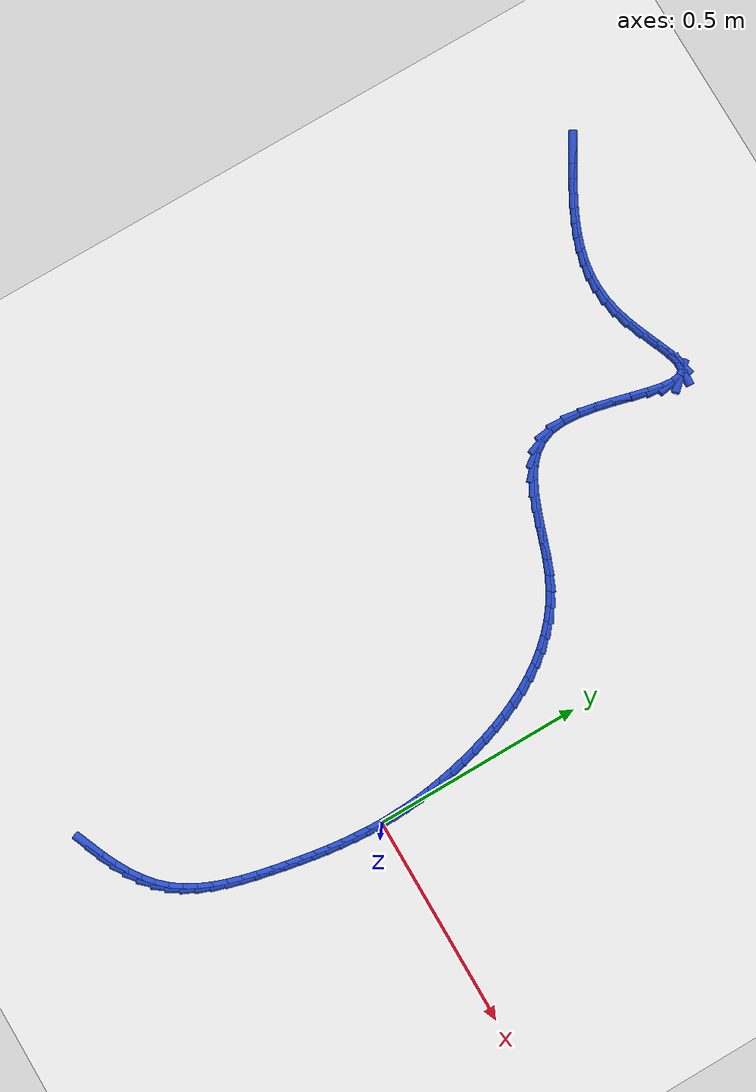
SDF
<sdf version="1.6">
 <world name="default">
  <model name="ground_plane">
   <static>1</static>
   <link name="link">
    <collision name="collision">
     <geometry><plane><normal>0 0 1</normal><size>100 100</size></plane></geometry>
     <surface><friction><ode><mu>100</mu><mu2>50</mu2></ode></friction></surface>
    </collision>
    <visual name="visual">
     <cast_shadows>0</cast_shadows>
     <geometry><plane><normal>0 0 1</normal><size>100 100</size></plane></geometry>
     <material>
      <script><uri>file://media/materials/scripts/gazebo.material</uri><name>Gazebo/WhiteGlow</name></script>
     </material>
    </visual>
   </link>
  </model>
  <model name="line">
   <link name="link_0">
    <pose>-1.0408340855860843e-17 5.551115123125783e-17 0.01 0 1.57 -1.564170804574413</pose>
    <collision name="collision">
     <geometry><cylinder><radius>0.01</radius><length>0.08</length></cylinder></geometry>
    </collision>
    <visual name="visual">
     <material>
      <script><name>Gazebo/Blue</name><uri>file://media/materials/scripts/gazebo.material</uri></script>
     </material>
     <geometry><cylinder><radius>0.01</radius><length>0.08</length></cylinder></geometry>
    </visual>
   </link>
   <link name="link_1">
    <pose>-0.00021548872016381447 0.032523559629226366 0.01 0 1.57 -1.5267158604913686</pose>
    <collision name="collision">
     <geometry><cylinder><radius>0.01</radius><length>0.08</length></cylinder></geometry>
    </collision>
    <visual name="visual">
     <material>
      <script><name>Gazebo/Blue</name><uri>file://media/materials/scripts/gazebo.material</uri></script>
     </material>
     <geometry><cylinder><radius>0.01</radius><length>0.08</length></cylinder></geometry>
    </visual>
   </link>
   <link name="link_2">
    <pose>-0.0016531517416874437 0.06511694742671872 0.01 0 1.57 -1.4901632687633821</pose>
    <collision name="collision">
     <geometry><cylinder><radius>0.01</radius><length>0.08</length></cylinder></geometry>
    </collision>
    <visual name="visual">
     <material>
      <script><name>Gazebo/Blue</name><uri>file://media/materials/scripts/gazebo.material</uri></script>
     </material>
     <geometry><cylinder><radius>0.01</radius><length>0.08</length></cylinder></geometry>
    </visual>
   </link>
   <link name="link_3">
    <pose>-0.004291216857513285 0.09776292919291431 0.01 0 1.57 -1.4545378203894928</pose>
    <collision name="collision">
     <geometry><cylinder><radius>0.01</radius><length>0.08</length></cylinder></geometry>
    </collision>
    <visual name="visual">
     <material>
      <script><name>Gazebo/Blue</name><uri>file://media/materials/scripts/gazebo.material</uri></script>
     </material>
     <geometry><cylinder><radius>0.01</radius><length>0.08</length></cylinder></geometry>
    </visual>
   </link>
   <link name="link_4">
    <pose>-0.008107911860583721 0.13044427072825032 0.01 0 1.57 -1.4198543087673157</pose>
    <collision name="collision">
     <geometry><cylinder><radius>0.01</radius><length>0.08</length></cylinder></geometry>
    </collision>
    <visual name="visual">
     <material>
      <script><name>Gazebo/Blue</name><uri>file://media/materials/scripts/gazebo.material</uri></script>
     </material>
     <geometry><cylinder><radius>0.01</radius><length>0.08</length></cylinder></geometry>
    </visual>
   </link>
   <link name="link_5">
    <pose>-0.013081464543841128 0.16314373783316377 0.01 0 1.57 -1.3861184481943685</pose>
    <collision name="collision">
     <geometry><cylinder><radius>0.01</radius><length>0.08</length></cylinder></geometry>
    </collision>
    <visual name="visual">
     <material>
      <script><name>Gazebo/Blue</name><uri>file://media/materials/scripts/gazebo.material</uri></script>
     </material>
     <geometry><cylinder><radius>0.01</radius><length>0.08</length></cylinder></geometry>
    </visual>
   </link>
   <link name="link_6">
    <pose>-0.019190102700227894 0.19584409630809194 0.01 0 1.57 -1.3533278613430586</pose>
    <collision name="collision">
     <geometry><cylinder><radius>0.01</radius><length>0.08</length></cylinder></geometry>
    </collision>
    <visual name="visual">
     <material>
      <script><name>Gazebo/Blue</name><uri>file://media/materials/scripts/gazebo.material</uri></script>
     </material>
     <geometry><cylinder><radius>0.01</radius><length>0.08</length></cylinder></geometry>
    </visual>
   </link>
   <link name="link_7">
    <pose>-0.026412054122686393 0.22852811195347195 0.01 0 1.57 -1.321424288780444</pose>
    <collision name="collision">
     <geometry><cylinder><radius>0.01</radius><length>0.08</length></cylinder></geometry>
    </collision>
    <visual name="visual">
     <material>
      <script><name>Gazebo/Blue</name><uri>file://media/materials/scripts/gazebo.material</uri></script>
     </material>
     <geometry><cylinder><radius>0.01</radius><length>0.08</length></cylinder></geometry>
    </visual>
   </link>
   <link name="link_8">
    <pose>-0.03472683607134908 0.2611769515002711 0.01 0 1.57 -1.2882460721909164</pose>
    <collision name="collision">
     <geometry><cylinder><radius>0.01</radius><length>0.08</length></cylinder></geometry>
    </collision>
    <visual name="visual">
     <material>
      <script><name>Gazebo/Blue</name><uri>file://media/materials/scripts/gazebo.material</uri></script>
     </material>
     <geometry><cylinder><radius>0.01</radius><length>0.08</length></cylinder></geometry>
    </visual>
   </link>
   <link name="link_9">
    <pose>-0.044169640928419185 0.2937027389084428 0.01 0 1.57 -1.2506834093468886</pose>
    <collision name="collision">
     <geometry><cylinder><radius>0.01</radius><length>0.08</length></cylinder></geometry>
    </collision>
    <visual name="visual">
     <material>
      <script><name>Gazebo/Blue</name><uri>file://media/materials/scripts/gazebo.material</uri></script>
     </material>
     <geometry><cylinder><radius>0.01</radius><length>0.08</length></cylinder></geometry>
    </visual>
   </link>
   <link name="link_10">
    <pose>-0.05485136848679792 0.32592371330704156 0.01 0 1.57 -1.208188009615541</pose>
    <collision name="collision">
     <geometry><cylinder><radius>0.01</radius><length>0.08</length></cylinder></geometry>
    </collision>
    <visual name="visual">
     <material>
      <script><name>Gazebo/Blue</name><uri>file://media/materials/scripts/gazebo.material</uri></script>
     </material>
     <geometry><cylinder><radius>0.01</radius><length>0.08</length></cylinder></geometry>
    </visual>
   </link>
   <link name="link_11">
    <pose>-0.0668883334756059 0.3576513987576465 0.01 0 1.57 -1.160390247306412</pose>
    <collision name="collision">
     <geometry><cylinder><radius>0.01</radius><length>0.08</length></cylinder></geometry>
    </collision>
    <visual name="visual">
     <material>
      <script><name>Gazebo/Blue</name><uri>file://media/materials/scripts/gazebo.material</uri></script>
     </material>
     <geometry><cylinder><radius>0.01</radius><length>0.08</length></cylinder></geometry>
    </visual>
   </link>
   <link name="link_12">
    <pose>-0.08039685062396364 0.388697319321836 0.01 0 1.57 -1.1069222254748396</pose>
    <collision name="collision">
     <geometry><cylinder><radius>0.01</radius><length>0.08</length></cylinder></geometry>
    </collision>
    <visual name="visual">
     <material>
      <script><name>Gazebo/Blue</name><uri>file://media/materials/scripts/gazebo.material</uri></script>
     </material>
     <geometry><cylinder><radius>0.01</radius><length>0.08</length></cylinder></geometry>
    </visual>
   </link>
   <link name="link_13">
    <pose>-0.0954932346609917 0.4188729990611888 0.01 0 1.57 -1.0474582827340422</pose>
    <collision name="collision">
     <geometry><cylinder><radius>0.01</radius><length>0.08</length></cylinder></geometry>
    </collision>
    <visual name="visual">
     <material>
      <script><name>Gazebo/Blue</name><uri>file://media/materials/scripts/gazebo.material</uri></script>
     </material>
     <geometry><cylinder><radius>0.01</radius><length>0.08</length></cylinder></geometry>
    </visual>
   </link>
   <link name="link_14">
    <pose>-0.11229380031581063 0.4479899620372835 0.01 0 1.57 -0.9817706041309131</pose>
    <collision name="collision">
     <geometry><cylinder><radius>0.01</radius><length>0.08</length></cylinder></geometry>
    </collision>
    <visual name="visual">
     <material>
      <script><name>Gazebo/Blue</name><uri>file://media/materials/scripts/gazebo.material</uri></script>
     </material>
     <geometry><cylinder><radius>0.01</radius><length>0.08</length></cylinder></geometry>
    </visual>
   </link>
   <link name="link_15">
    <pose>-0.130914862317541 0.4758597323116988 0.01 0 1.57 -0.9097999184941654</pose>
    <collision name="collision">
     <geometry><cylinder><radius>0.01</radius><length>0.08</length></cylinder></geometry>
    </collision>
    <visual name="visual">
     <material>
      <script><name>Gazebo/Blue</name><uri>file://media/materials/scripts/gazebo.material</uri></script>
     </material>
     <geometry><cylinder><radius>0.01</radius><length>0.08</length></cylinder></geometry>
    </visual>
   </link>
   <link name="link_16">
    <pose>-0.15147273539530337 0.5022938339460133 0.01 0 1.57 -0.83173599106406</pose>
    <collision name="collision">
     <geometry><cylinder><radius>0.01</radius><length>0.08</length></cylinder></geometry>
    </collision>
    <visual name="visual">
     <material>
      <script><name>Gazebo/Blue</name><uri>file://media/materials/scripts/gazebo.material</uri></script>
     </material>
     <geometry><cylinder><radius>0.01</radius><length>0.08</length></cylinder></geometry>
    </visual>
   </link>
   <link name="link_17">
    <pose>-0.17408373427821833 0.5271037910018059 0.01 0 1.57 -0.7480947168603113</pose>
    <collision name="collision">
     <geometry><cylinder><radius>0.01</radius><length>0.08</length></cylinder></geometry>
    </collision>
    <visual name="visual">
     <material>
      <script><name>Gazebo/Blue</name><uri>file://media/materials/scripts/gazebo.material</uri></script>
     </material>
     <geometry><cylinder><radius>0.01</radius><length>0.08</length></cylinder></geometry>
    </visual>
   </link>
   <link name="link_18">
    <pose>-0.19886417369540638 0.550101127540655 0.01 0 1.57 -0.6597701512960921</pose>
    <collision name="collision">
     <geometry><cylinder><radius>0.01</radius><length>0.08</length></cylinder></geometry>
    </collision>
    <visual name="visual">
     <material>
      <script><name>Gazebo/Blue</name><uri>file://media/materials/scripts/gazebo.material</uri></script>
     </material>
     <geometry><cylinder><radius>0.01</radius><length>0.08</length></cylinder></geometry>
    </visual>
   </link>
   <link name="link_19">
    <pose>-0.22593036837598804 0.5710973676241394 0.01 0 1.57 -0.5680356999523042</pose>
    <collision name="collision">
     <geometry><cylinder><radius>0.01</radius><length>0.08</length></cylinder></geometry>
    </collision>
    <visual name="visual">
     <material>
      <script><name>Gazebo/Blue</name><uri>file://media/materials/scripts/gazebo.material</uri></script>
     </material>
     <geometry><cylinder><radius>0.01</radius><length>0.08</length></cylinder></geometry>
    </visual>
   </link>
   <link name="link_20">
    <pose>-0.255398633049084 0.5899040353138376 0.01 0 1.57 -0.4751199236134291</pose>
    <collision name="collision">
     <geometry><cylinder><radius>0.01</radius><length>0.08</length></cylinder></geometry>
    </collision>
    <visual name="visual">
     <material>
      <script><name>Gazebo/Blue</name><uri>file://media/materials/scripts/gazebo.material</uri></script>
     </material>
     <geometry><cylinder><radius>0.01</radius><length>0.08</length></cylinder></geometry>
    </visual>
   </link>
   <link name="link_21">
    <pose>-0.2873666610249024 0.6063491485619591 0.01 0 1.57 -0.39850162706115866</pose>
    <collision name="collision">
     <geometry><cylinder><radius>0.01</radius><length>0.08</length></cylinder></geometry>
    </collision>
    <visual name="visual">
     <material>
      <script><name>Gazebo/Blue</name><uri>file://media/materials/scripts/gazebo.material</uri></script>
     </material>
     <geometry><cylinder><radius>0.01</radius><length>0.08</length></cylinder></geometry>
    </visual>
   </link>
   <link name="link_22">
    <pose>-0.3214412702870145 0.6206955173195821 0.01 0 1.57 -0.35269231981375615</pose>
    <collision name="collision">
     <geometry><cylinder><radius>0.01</radius><length>0.08</length></cylinder></geometry>
    </collision>
    <visual name="visual">
     <material>
      <script><name>Gazebo/Blue</name><uri>file://media/materials/scripts/gazebo.material</uri></script>
     </material>
     <geometry><cylinder><radius>0.01</radius><length>0.08</length></cylinder></geometry>
    </visual>
   </link>
   <link name="link_23">
    <pose>-0.3567008920000841 0.6336739692781433 0.01 0 1.57 -0.3351829775562453</pose>
    <collision name="collision">
     <geometry><cylinder><radius>0.01</radius><length>0.08</length></cylinder></geometry>
    </collision>
    <visual name="visual">
     <material>
      <script><name>Gazebo/Blue</name><uri>file://media/materials/scripts/gazebo.material</uri></script>
     </material>
     <geometry><cylinder><radius>0.01</radius><length>0.08</length></cylinder></geometry>
    </visual>
   </link>
   <link name="link_24">
    <pose>-0.39219782085605287 0.6460384824660403 0.01 0 1.57 -0.345082191216047</pose>
    <collision name="collision">
     <geometry><cylinder><radius>0.01</radius><length>0.08</length></cylinder></geometry>
    </collision>
    <visual name="visual">
     <material>
      <script><name>Gazebo/Blue</name><uri>file://media/materials/scripts/gazebo.material</uri></script>
     </material>
     <geometry><cylinder><radius>0.01</radius><length>0.08</length></cylinder></geometry>
    </visual>
   </link>
   <link name="link_25">
    <pose>-0.426984351546863 0.6585430349116712 0.01 0 1.57 -0.3843309115429505</pose>
    <collision name="collision">
     <geometry><cylinder><radius>0.01</radius><length>0.08</length></cylinder></geometry>
    </collision>
    <visual name="visual">
     <material>
      <script><name>Gazebo/Blue</name><uri>file://media/materials/scripts/gazebo.material</uri></script>
     </material>
     <geometry><cylinder><radius>0.01</radius><length>0.08</length></cylinder></geometry>
    </visual>
   </link>
   <link name="link_26">
    <pose>-0.4601127787644565 0.6719416046434337 0.01 0 1.57 -0.458003324438978</pose>
    <collision name="collision">
     <geometry><cylinder><radius>0.01</radius><length>0.08</length></cylinder></geometry>
    </collision>
    <visual name="visual">
     <material>
      <script><name>Gazebo/Blue</name><uri>file://media/materials/scripts/gazebo.material</uri></script>
     </material>
     <geometry><cylinder><radius>0.01</radius><length>0.08</length></cylinder></geometry>
    </visual>
   </link>
   <link name="link_27">
    <pose>-0.4906353972007751 0.6869881696897255 0.01 0 1.57 -0.5742510252359123</pose>
    <collision name="collision">
     <geometry><cylinder><radius>0.01</radius><length>0.08</length></cylinder></geometry>
    </collision>
    <visual name="visual">
     <material>
      <script><name>Gazebo/Blue</name><uri>file://media/materials/scripts/gazebo.material</uri></script>
     </material>
     <geometry><cylinder><radius>0.01</radius><length>0.08</length></cylinder></geometry>
    </visual>
   </link>
   <link name="link_28">
    <pose>-0.5176045015477615 0.704436708078945 0.01 0 1.57 -0.7421631665555947</pose>
    <collision name="collision">
     <geometry><cylinder><radius>0.01</radius><length>0.08</length></cylinder></geometry>
    </collision>
    <visual name="visual">
     <material>
      <script><name>Gazebo/Blue</name><uri>file://media/materials/scripts/gazebo.material</uri></script>
     </material>
     <geometry><cylinder><radius>0.01</radius><length>0.08</length></cylinder></geometry>
    </visual>
   </link>
   <link name="link_29">
    <pose>-0.5400723864973574 0.7250411978394897 0.01 0 1.57 -0.963944680451375</pose>
    <collision name="collision">
     <geometry><cylinder><radius>0.01</radius><length>0.08</length></cylinder></geometry>
    </collision>
    <visual name="visual">
     <material>
      <script><name>Gazebo/Blue</name><uri>file://media/materials/scripts/gazebo.material</uri></script>
     </material>
     <geometry><cylinder><radius>0.01</radius><length>0.08</length></cylinder></geometry>
    </visual>
   </link>
   <link name="link_30">
    <pose>-0.557091346741505 0.7495556169997577 0.01 0 1.57 -1.2216612405446048</pose>
    <collision name="collision">
     <geometry><cylinder><radius>0.01</radius><length>0.08</length></cylinder></geometry>
    </collision>
    <visual name="visual">
     <material>
      <script><name>Gazebo/Blue</name><uri>file://media/materials/scripts/gazebo.material</uri></script>
     </material>
     <geometry><cylinder><radius>0.01</radius><length>0.08</length></cylinder></geometry>
    </visual>
   </link>
   <link name="link_31">
    <pose>-0.567713676972146 0.7787339435881467 0.01 0 1.57 -1.4677217655302628</pose>
    <collision name="collision">
     <geometry><cylinder><radius>0.01</radius><length>0.08</length></cylinder></geometry>
    </collision>
    <visual name="visual">
     <material>
      <script><name>Gazebo/Blue</name><uri>file://media/materials/scripts/gazebo.material</uri></script>
     </material>
     <geometry><cylinder><radius>0.01</radius><length>0.08</length></cylinder></geometry>
    </visual>
   </link>
   <link name="link_32">
    <pose>-0.5712664481055553 0.8130797626722868 0.01 0 1.57 1.5065172757214418</pose>
    <collision name="collision">
     <geometry><cylinder><radius>0.01</radius><length>0.08</length></cylinder></geometry>
    </collision>
    <visual name="visual">
     <material>
      <script><name>Gazebo/Blue</name><uri>file://media/materials/scripts/gazebo.material</uri></script>
     </material>
     <geometry><cylinder><radius>0.01</radius><length>0.08</length></cylinder></geometry>
    </visual>
   </link>
   <link name="link_33">
    <pose>-0.5687912159521845 0.8515343154529437 0.01 0 1.57 1.4060175882886885</pose>
    <collision name="collision">
     <geometry><cylinder><radius>0.01</radius><length>0.08</length></cylinder></geometry>
    </collision>
    <visual name="visual">
     <material>
      <script><name>Gazebo/Blue</name><uri>file://media/materials/scripts/gazebo.material</uri></script>
     </material>
     <geometry><cylinder><radius>0.01</radius><length>0.08</length></cylinder></geometry>
    </visual>
   </link>
   <link name="link_34">
    <pose>-0.5619895930285571 0.8924373589474927 0.01 0 1.57 1.3484602443475313</pose>
    <collision name="collision">
     <geometry><cylinder><radius>0.01</radius><length>0.08</length></cylinder></geometry>
    </collision>
    <visual name="visual">
     <material>
      <script><name>Gazebo/Blue</name><uri>file://media/materials/scripts/gazebo.material</uri></script>
     </material>
     <geometry><cylinder><radius>0.01</radius><length>0.08</length></cylinder></geometry>
    </visual>
   </link>
   <link name="link_35">
    <pose>-0.5525645779636124 0.9341273870625975 0.01 0 1.57 1.3225567108189606</pose>
    <collision name="collision">
     <geometry><cylinder><radius>0.01</radius><length>0.08</length></cylinder></geometry>
    </collision>
    <visual name="visual">
     <material>
      <script><name>Gazebo/Blue</name><uri>file://media/materials/scripts/gazebo.material</uri></script>
     </material>
     <geometry><cylinder><radius>0.01</radius><length>0.08</length></cylinder></geometry>
    </visual>
   </link>
   <link name="link_36">
    <pose>-0.5422191693862908 0.9749428937049223 0.01 0 1.57 1.325991410335295</pose>
    <collision name="collision">
     <geometry><cylinder><radius>0.01</radius><length>0.08</length></cylinder></geometry>
    </collision>
    <visual name="visual">
     <material>
      <script><name>Gazebo/Blue</name><uri>file://media/materials/scripts/gazebo.material</uri></script>
     </material>
     <geometry><cylinder><radius>0.01</radius><length>0.08</length></cylinder></geometry>
    </visual>
   </link>
   <link name="link_37">
    <pose>-0.5326563659255316 1.0132223727811307 0.01 0 1.57 1.3660535796439837</pose>
    <collision name="collision">
     <geometry><cylinder><radius>0.01</radius><length>0.08</length></cylinder></geometry>
    </collision>
    <visual name="visual">
     <material>
      <script><name>Gazebo/Blue</name><uri>file://media/materials/scripts/gazebo.material</uri></script>
     </material>
     <geometry><cylinder><radius>0.01</radius><length>0.08</length></cylinder></geometry>
    </visual>
   </link>
   <link name="link_38">
    <pose>-0.5255791662102745 1.0473043181978867 0.01 0 1.57 1.468802085061709</pose>
    <collision name="collision">
     <geometry><cylinder><radius>0.01</radius><length>0.08</length></cylinder></geometry>
    </collision>
    <visual name="visual">
     <material>
      <script><name>Gazebo/Blue</name><uri>file://media/materials/scripts/gazebo.material</uri></script>
     </material>
     <geometry><cylinder><radius>0.01</radius><length>0.08</length></cylinder></geometry>
    </visual>
   </link>
   <link name="link_39">
    <pose>-0.5226905688694596 1.075527223861855 0.01 0 1.57 -1.4267449566413157</pose>
    <collision name="collision">
     <geometry><cylinder><radius>0.01</radius><length>0.08</length></cylinder></geometry>
    </collision>
    <visual name="visual">
     <material>
      <script><name>Gazebo/Blue</name><uri>file://media/materials/scripts/gazebo.material</uri></script>
     </material>
     <geometry><cylinder><radius>0.01</radius><length>0.08</length></cylinder></geometry>
    </visual>
   </link>
   <link name="link_40">
    <pose>-0.5256935725320268 1.096229583679699 0.01 0 1.57 -0.8270915157916727</pose>
    <collision name="collision">
     <geometry><cylinder><radius>0.01</radius><length>0.08</length></cylinder></geometry>
    </collision>
    <visual name="visual">
     <material>
      <script><name>Gazebo/Blue</name><uri>file://media/materials/scripts/gazebo.material</uri></script>
     </material>
     <geometry><cylinder><radius>0.01</radius><length>0.08</length></cylinder></geometry>
    </visual>
   </link>
   <link name="link_41">
    <pose>-0.5362911758269155 1.1077498915580826 0.01 0 1.57 -0.06721329275596687</pose>
    <collision name="collision">
     <geometry><cylinder><radius>0.01</radius><length>0.08</length></cylinder></geometry>
    </collision>
    <visual name="visual">
     <material>
      <script><name>Gazebo/Blue</name><uri>file://media/materials/scripts/gazebo.material</uri></script>
     </material>
     <geometry><cylinder><radius>0.01</radius><length>0.08</length></cylinder></geometry>
    </visual>
   </link>
   <link name="link_42">
    <pose>-0.5556733424497363 1.1090545961122473 0.01 0 1.57 0.25269013360167036</pose>
    <collision name="collision">
     <geometry><cylinder><radius>0.01</radius><length>0.08</length></cylinder></geometry>
    </collision>
    <visual name="visual">
     <material>
      <script><name>Gazebo/Blue</name><uri>file://media/materials/scripts/gazebo.material</uri></script>
     </material>
     <geometry><cylinder><radius>0.01</radius><length>0.08</length></cylinder></geometry>
    </visual>
   </link>
   <link name="link_43">
    <pose>-0.5825820153563831 1.102106523105138 0.01 0 1.57 0.3635547472799359</pose>
    <collision name="collision">
     <geometry><cylinder><radius>0.01</radius><length>0.08</length></cylinder></geometry>
    </collision>
    <visual name="visual">
     <material>
      <script><name>Gazebo/Blue</name><uri>file://media/materials/scripts/gazebo.material</uri></script>
     </material>
     <geometry><cylinder><radius>0.01</radius><length>0.08</length></cylinder></geometry>
    </visual>
   </link>
   <link name="link_44">
    <pose>-0.6150297826313605 1.0897612285914537 0.01 0 1.57 0.39211564461522525</pose>
    <collision name="collision">
     <geometry><cylinder><radius>0.01</radius><length>0.08</length></cylinder></geometry>
    </collision>
    <visual name="visual">
     <material>
      <script><name>Gazebo/Blue</name><uri>file://media/materials/scripts/gazebo.material</uri></script>
     </material>
     <geometry><cylinder><radius>0.01</radius><length>0.08</length></cylinder></geometry>
    </visual>
   </link>
   <link name="link_45">
    <pose>-0.6510291080634547 1.0748744207638434 0.01 0 1.57 0.37007345212906</pose>
    <collision name="collision">
     <geometry><cylinder><radius>0.01</radius><length>0.08</length></cylinder></geometry>
    </collision>
    <visual name="visual">
     <material>
      <script><name>Gazebo/Blue</name><uri>file://media/materials/scripts/gazebo.material</uri></script>
     </material>
     <geometry><cylinder><radius>0.01</radius><length>0.08</length></cylinder></geometry>
    </visual>
   </link>
   <link name="link_46">
    <pose>-0.6885924554414511 1.0603018078149564 0.01 0 1.57 0.29863229330039986</pose>
    <collision name="collision">
     <geometry><cylinder><radius>0.01</radius><length>0.08</length></cylinder></geometry>
    </collision>
    <visual name="visual">
     <material>
      <script><name>Gazebo/Blue</name><uri>file://media/materials/scripts/gazebo.material</uri></script>
     </material>
     <geometry><cylinder><radius>0.01</radius><length>0.08</length></cylinder></geometry>
    </visual>
   </link>
   <link name="link_47">
    <pose>-0.7257577996019973 1.0488608913991415 0.01 0 1.57 0.1899999498678007</pose>
    <collision name="collision">
     <geometry><cylinder><radius>0.01</radius><length>0.08</length></cylinder></geometry>
    </collision>
    <visual name="visual">
     <material>
      <script><name>Gazebo/Blue</name><uri>file://media/materials/scripts/gazebo.material</uri></script>
     </material>
     <geometry><cylinder><radius>0.01</radius><length>0.08</length></cylinder></geometry>
    </visual>
   </link>
   <link name="link_48">
    <pose>-0.7614839824579925 1.0419900395730777 0.01 0 1.57 0.07528380188945365</pose>
    <collision name="collision">
     <geometry><cylinder><radius>0.01</radius><length>0.08</length></cylinder></geometry>
    </collision>
    <visual name="visual">
     <material>
      <script><name>Gazebo/Blue</name><uri>file://media/materials/scripts/gazebo.material</uri></script>
     </material>
     <geometry><cylinder><radius>0.01</radius><length>0.08</length></cylinder></geometry>
    </visual>
   </link>
   <link name="link_49">
    <pose>-0.7958866251549587 1.0393951737179805 0.01 0 1.57 -0.03836672406796584</pose>
    <collision name="collision">
     <geometry><cylinder><radius>0.01</radius><length>0.08</length></cylinder></geometry>
    </collision>
    <visual name="visual">
     <material>
      <script><name>Gazebo/Blue</name><uri>file://media/materials/scripts/gazebo.material</uri></script>
     </material>
     <geometry><cylinder><radius>0.01</radius><length>0.08</length></cylinder></geometry>
    </visual>
   </link>
   <link name="link_50">
    <pose>-0.8291548130623894 1.0406721917576973 0.01 0 1.57 -0.14575315261627442</pose>
    <collision name="collision">
     <geometry><cylinder><radius>0.01</radius><length>0.08</length></cylinder></geometry>
    </collision>
    <visual name="visual">
     <material>
      <script><name>Gazebo/Blue</name><uri>file://media/materials/scripts/gazebo.material</uri></script>
     </material>
     <geometry><cylinder><radius>0.01</radius><length>0.08</length></cylinder></geometry>
    </visual>
   </link>
   <link name="link_51">
    <pose>-0.8614776315497779 1.045416991616076 0.01 0 1.57 -0.24249784045132938</pose>
    <collision name="collision">
     <geometry><cylinder><radius>0.01</radius><length>0.08</length></cylinder></geometry>
    </collision>
    <visual name="visual">
     <material>
      <script><name>Gazebo/Blue</name><uri>file://media/materials/scripts/gazebo.material</uri></script>
     </material>
     <geometry><cylinder><radius>0.01</radius><length>0.08</length></cylinder></geometry>
    </visual>
   </link>
   <link name="link_52">
    <pose>-0.8930441659866172 1.053225471216963 0.01 0 1.57 -0.32566327671614204</pose>
    <collision name="collision">
     <geometry><cylinder><radius>0.01</radius><length>0.08</length></cylinder></geometry>
    </collision>
    <visual name="visual">
     <material>
      <script><name>Gazebo/Blue</name><uri>file://media/materials/scripts/gazebo.material</uri></script>
     </material>
     <geometry><cylinder><radius>0.01</radius><length>0.08</length></cylinder></geometry>
    </visual>
   </link>
   <link name="link_53">
    <pose>-0.9240435017424012 1.0636935284842075 0.01 0 1.57 -0.39380818073051244</pose>
    <collision name="collision">
     <geometry><cylinder><radius>0.01</radius><length>0.08</length></cylinder></geometry>
    </collision>
    <visual name="visual">
     <material>
      <script><name>Gazebo/Blue</name><uri>file://media/materials/scripts/gazebo.material</uri></script>
     </material>
     <geometry><cylinder><radius>0.01</radius><length>0.08</length></cylinder></geometry>
    </visual>
   </link>
   <link name="link_54">
    <pose>-0.9546647241866232 1.076417061341655 0.01 0 1.57 -0.4466503895187564</pose>
    <collision name="collision">
     <geometry><cylinder><radius>0.01</radius><length>0.08</length></cylinder></geometry>
    </collision>
    <visual name="visual">
     <material>
      <script><name>Gazebo/Blue</name><uri>file://media/materials/scripts/gazebo.material</uri></script>
     </material>
     <geometry><cylinder><radius>0.01</radius><length>0.08</length></cylinder></geometry>
    </visual>
   </link>
   <link name="link_55">
    <pose>-0.9850969186887767 1.0909919677131548 0.01 0 1.57 -0.4846796203394419</pose>
    <collision name="collision">
     <geometry><cylinder><radius>0.01</radius><length>0.08</length></cylinder></geometry>
    </collision>
    <visual name="visual">
     <material>
      <script><name>Gazebo/Blue</name><uri>file://media/materials/scripts/gazebo.material</uri></script>
     </material>
     <geometry><cylinder><radius>0.01</radius><length>0.08</length></cylinder></geometry>
    </visual>
   </link>
   <link name="link_56">
    <pose>-1.0155265908356563 1.1070154229758058 0.01 0 1.57 -0.5109127465685978</pose>
    <collision name="collision">
     <geometry><cylinder><radius>0.01</radius><length>0.08</length></cylinder></geometry>
    </collision>
    <visual name="visual">
     <material>
      <script><name>Gazebo/Blue</name><uri>file://media/materials/scripts/gazebo.material</uri></script>
     </material>
     <geometry><cylinder><radius>0.01</radius><length>0.08</length></cylinder></geometry>
    </visual>
   </link>
   <link name="link_57">
    <pose>-1.0460535395283852 1.124127537804218 0.01 0 1.57 -0.5288578066641408</pose>
    <collision name="collision">
     <geometry><cylinder><radius>0.01</radius><length>0.08</length></cylinder></geometry>
    </collision>
    <visual name="visual">
     <material>
      <script><name>Gazebo/Blue</name><uri>file://media/materials/scripts/gazebo.material</uri></script>
     </material>
     <geometry><cylinder><radius>0.01</radius><length>0.08</length></cylinder></geometry>
    </visual>
   </link>
   <link name="link_58">
    <pose>-1.076672210981516 1.1420205912716215 0.01 0 1.57 -0.539228829341392</pose>
    <collision name="collision">
     <geometry><cylinder><radius>0.01</radius><length>0.08</length></cylinder></geometry>
    </collision>
    <visual name="visual">
     <material>
      <script><name>Gazebo/Blue</name><uri>file://media/materials/scripts/gazebo.material</uri></script>
     </material>
     <geometry><cylinder><radius>0.01</radius><length>0.08</length></cylinder></geometry>
    </visual>
   </link>
   <link name="link_59">
    <pose>-1.107370698017706 1.1603900085151178 0.01 0 1.57 -0.5423618878432978</pose>
    <collision name="collision">
     <geometry><cylinder><radius>0.01</radius><length>0.08</length></cylinder></geometry>
    </collision>
    <visual name="visual">
     <material>
      <script><name>Gazebo/Blue</name><uri>file://media/materials/scripts/gazebo.material</uri></script>
     </material>
     <geometry><cylinder><radius>0.01</radius><length>0.08</length></cylinder></geometry>
    </visual>
   </link>
   <link name="link_229">
    <pose>-0.2864836225582636 -0.5840682489949223 0.01 0 1.57 0.396319856969483</pose>
    <collision name="collision">
     <geometry><cylinder><radius>0.01</radius><length>0.08</length></cylinder></geometry>
    </collision>
    <visual name="visual">
     <material>
      <script><name>Gazebo/Blue</name><uri>file://media/materials/scripts/gazebo.material</uri></script>
     </material>
     <geometry><cylinder><radius>0.01</radius><length>0.08</length></cylinder></geometry>
    </visual>
   </link>
   <link name="link_230">
    <pose>-0.25376370672695575 -0.5703762090597619 0.01 0 1.57 0.4469822289409849</pose>
    <collision name="collision">
     <geometry><cylinder><radius>0.01</radius><length>0.08</length></cylinder></geometry>
    </collision>
    <visual name="visual">
     <material>
      <script><name>Gazebo/Blue</name><uri>file://media/materials/scripts/gazebo.material</uri></script>
     </material>
     <geometry><cylinder><radius>0.01</radius><length>0.08</length></cylinder></geometry>
    </visual>
   </link>
   <link name="link_231">
    <pose>-0.22242730367325583 -0.5553554637556517 0.01 0 1.57 0.5129408792111366</pose>
    <collision name="collision">
     <geometry><cylinder><radius>0.01</radius><length>0.08</length></cylinder></geometry>
    </collision>
    <visual name="visual">
     <material>
      <script><name>Gazebo/Blue</name><uri>file://media/materials/scripts/gazebo.material</uri></script>
     </material>
     <geometry><cylinder><radius>0.01</radius><length>0.08</length></cylinder></geometry>
    </visual>
   </link>
   <link name="link_232">
    <pose>-0.19287143311324312 -0.5387088255579265 0.01 0 1.57 0.5959883822296346</pose>
    <collision name="collision">
     <geometry><cylinder><radius>0.01</radius><length>0.08</length></cylinder></geometry>
    </collision>
    <visual name="visual">
     <material>
      <script><name>Gazebo/Blue</name><uri>file://media/materials/scripts/gazebo.material</uri></script>
     </material>
     <geometry><cylinder><radius>0.01</radius><length>0.08</length></cylinder></geometry>
    </visual>
   </link>
   <link name="link_233">
    <pose>-0.16549311476299702 -0.5201391069419221 0.01 0 1.57 0.6975913774152778</pose>
    <collision name="collision">
     <geometry><cylinder><radius>0.01</radius><length>0.08</length></cylinder></geometry>
    </collision>
    <visual name="visual">
     <material>
      <script><name>Gazebo/Blue</name><uri>file://media/materials/scripts/gazebo.material</uri></script>
     </material>
     <geometry><cylinder><radius>0.01</radius><length>0.08</length></cylinder></geometry>
    </visual>
   </link>
   <link name="link_234">
    <pose>-0.14068936833859685 -0.4993491203829742 0.01 0 1.57 0.8179992833814035</pose>
    <collision name="collision">
     <geometry><cylinder><radius>0.01</radius><length>0.08</length></cylinder></geometry>
    </collision>
    <visual name="visual">
     <material>
      <script><name>Gazebo/Blue</name><uri>file://media/materials/scripts/gazebo.material</uri></script>
     </material>
     <geometry><cylinder><radius>0.01</radius><length>0.08</length></cylinder></geometry>
    </visual>
   </link>
   <link name="link_235">
    <pose>-0.11885555706796194 -0.47604318110977023 0.01 0 1.57 0.9454621748775585</pose>
    <collision name="collision">
     <geometry><cylinder><radius>0.01</radius><length>0.08</length></cylinder></geometry>
    </collision>
    <visual name="visual">
     <material>
      <script><name>Gazebo/Blue</name><uri>file://media/materials/scripts/gazebo.material</uri></script>
     </material>
     <geometry><cylinder><radius>0.01</radius><length>0.08</length></cylinder></geometry>
    </visual>
   </link>
   <link name="link_236">
    <pose>-0.10015248893436102 -0.45013839106974424 0.01 0 1.57 1.0570800947965555</pose>
    <collision name="collision">
     <geometry><cylinder><radius>0.01</radius><length>0.08</length></cylinder></geometry>
    </collision>
    <visual name="visual">
     <material>
      <script><name>Gazebo/Blue</name><uri>file://media/materials/scripts/gazebo.material</uri></script>
     </material>
     <geometry><cylinder><radius>0.01</radius><length>0.08</length></cylinder></geometry>
    </visual>
   </link>
   <link name="link_237">
    <pose>-0.08426581768797503 -0.4219829084858241 0.01 0 1.57 1.1496233927289898</pose>
    <collision name="collision">
     <geometry><cylinder><radius>0.01</radius><length>0.08</length></cylinder></geometry>
    </collision>
    <visual name="visual">
     <material>
      <script><name>Gazebo/Blue</name><uri>file://media/materials/scripts/gazebo.material</uri></script>
     </material>
     <geometry><cylinder><radius>0.01</radius><length>0.08</length></cylinder></geometry>
    </visual>
   </link>
   <link name="link_238">
    <pose>-0.07082376422508452 -0.3919769942254469 0.01 0 1.57 1.2239742090102215</pose>
    <collision name="collision">
     <geometry><cylinder><radius>0.01</radius><length>0.08</length></cylinder></geometry>
    </collision>
    <visual name="visual">
     <material>
      <script><name>Gazebo/Blue</name><uri>file://media/materials/scripts/gazebo.material</uri></script>
     </material>
     <geometry><cylinder><radius>0.01</radius><length>0.08</length></cylinder></geometry>
    </visual>
   </link>
   <link name="link_239">
    <pose>-0.05945454944197 -0.3605209091560496 0.01 0 1.57 1.281701903030411</pose>
    <collision name="collision">
     <geometry><cylinder><radius>0.01</radius><length>0.08</length></cylinder></geometry>
    </collision>
    <visual name="visual">
     <material>
      <script><name>Gazebo/Blue</name><uri>file://media/materials/scripts/gazebo.material</uri></script>
     </material>
     <geometry><cylinder><radius>0.01</radius><length>0.08</length></cylinder></geometry>
    </visual>
   </link>
   <link name="link_240">
    <pose>-0.049786394234912185 -0.3280149141450699 0.01 0 1.57 1.3243998666865138</pose>
    <collision name="collision">
     <geometry><cylinder><radius>0.01</radius><length>0.08</length></cylinder></geometry>
    </collision>
    <visual name="visual">
     <material>
      <script><name>Gazebo/Blue</name><uri>file://media/materials/scripts/gazebo.material</uri></script>
     </material>
     <geometry><cylinder><radius>0.01</radius><length>0.08</length></cylinder></geometry>
    </visual>
   </link>
   <link name="link_241">
    <pose>-0.04144751950019108 -0.29485927005994306 0.01 0 1.57 1.353324890379992</pose>
    <collision name="collision">
     <geometry><cylinder><radius>0.01</radius><length>0.08</length></cylinder></geometry>
    </collision>
    <visual name="visual">
     <material>
      <script><name>Gazebo/Blue</name><uri>file://media/materials/scripts/gazebo.material</uri></script>
     </material>
     <geometry><cylinder><radius>0.01</radius><length>0.08</length></cylinder></geometry>
    </visual>
   </link>
   <link name="link_242">
    <pose>-0.034066146134087476 -0.26145423776810695 0.01 0 1.57 1.3698608676181645</pose>
    <collision name="collision">
     <geometry><cylinder><radius>0.01</radius><length>0.08</length></cylinder></geometry>
    </collision>
    <visual name="visual">
     <material>
      <script><name>Gazebo/Blue</name><uri>file://media/materials/scripts/gazebo.material</uri></script>
     </material>
     <geometry><cylinder><radius>0.01</radius><length>0.08</length></cylinder></geometry>
    </visual>
   </link>
   <link name="link_243">
    <pose>-0.027289194851552272 -0.22818236897052302 0.01 0 1.57 1.3832259392627841</pose>
    <collision name="collision">
     <geometry><cylinder><radius>0.01</radius><length>0.08</length></cylinder></geometry>
    </collision>
    <visual name="visual">
     <material>
      <script><name>Gazebo/Blue</name><uri>file://media/materials/scripts/gazebo.material</uri></script>
     </material>
     <geometry><cylinder><radius>0.01</radius><length>0.08</length></cylinder></geometry>
    </visual>
   </link>
   <link name="link_244">
    <pose>-0.021025032632961422 -0.1951786196283043 0.01 0 1.57 1.4001043732234273</pose>
    <collision name="collision">
     <geometry><cylinder><radius>0.01</radius><length>0.08</length></cylinder></geometry>
    </collision>
    <visual name="visual">
     <material>
      <script><name>Gazebo/Blue</name><uri>file://media/materials/scripts/gazebo.material</uri></script>
     </material>
     <geometry><cylinder><radius>0.01</radius><length>0.08</length></cylinder></geometry>
    </visual>
   </link>
   <link name="link_245">
    <pose>-0.015374293670160584 -0.16239586414788842 0.01 0 1.57 1.420699204290443</pose>
    <collision name="collision">
     <geometry><cylinder><radius>0.01</radius><length>0.08</length></cylinder></geometry>
    </collision>
    <visual name="visual">
     <material>
      <script><name>Gazebo/Blue</name><uri>file://media/materials/scripts/gazebo.material</uri></script>
     </material>
     <geometry><cylinder><radius>0.01</radius><length>0.08</length></cylinder></geometry>
    </visual>
   </link>
   <link name="link_246">
    <pose>-0.010442065171920992 -0.12978275982433674 0.01 0 1.57 1.4450240764752575</pose>
    <collision name="collision">
     <geometry><cylinder><radius>0.01</radius><length>0.08</length></cylinder></geometry>
    </collision>
    <visual name="visual">
     <material>
      <script><name>Gazebo/Blue</name><uri>file://media/materials/scripts/gazebo.material</uri></script>
     </material>
     <geometry><cylinder><radius>0.01</radius><length>0.08</length></cylinder></geometry>
    </visual>
   </link>
   <link name="link_247">
    <pose>-0.0063334343470139035 -0.09728796395271068 0.01 0 1.57 1.47304660574222</pose>
    <collision name="collision">
     <geometry><cylinder><radius>0.01</radius><length>0.08</length></cylinder></geometry>
    </collision>
    <visual name="visual">
     <material>
      <script><name>Gazebo/Blue</name><uri>file://media/materials/scripts/gazebo.material</uri></script>
     </material>
     <geometry><cylinder><radius>0.01</radius><length>0.08</length></cylinder></geometry>
    </visual>
   </link>
   <link name="link_248">
    <pose>-0.0031534884042105494 -0.06486013382807157 0.01 0 1.57 1.5046778581281215</pose>
    <collision name="collision">
     <geometry><cylinder><radius>0.01</radius><length>0.08</length></cylinder></geometry>
    </collision>
    <visual name="visual">
     <material>
      <script><name>Gazebo/Blue</name><uri>file://media/materials/scripts/gazebo.material</uri></script>
     </material>
     <geometry><cylinder><radius>0.01</radius><length>0.08</length></cylinder></geometry>
    </visual>
   </link>
   <link name="link_249">
    <pose>-0.0010073145522821688 -0.03244792674548089 0.01 0 1.57 1.539762259398608</pose>
    <collision name="collision">
     <geometry><cylinder><radius>0.01</radius><length>0.08</length></cylinder></geometry>
    </collision>
    <visual name="visual">
     <material>
      <script><name>Gazebo/Blue</name><uri>file://media/materials/scripts/gazebo.material</uri></script>
     </material>
     <geometry><cylinder><radius>0.01</radius><length>0.08</length></cylinder></geometry>
    </visual>
   </link>
   <link name="link_250">
    <pose>2.6020852139652106e-18 1.3183898417423734e-16 0.01 0 1.57 -1.5635233019621053</pose>
    <collision name="collision">
     <geometry><cylinder><radius>0.01</radius><length>0.08</length></cylinder></geometry>
    </collision>
    <visual name="visual">
     <material>
      <script><name>Gazebo/Blue</name><uri>file://media/materials/scripts/gazebo.material</uri></script>
     </material>
     <geometry><cylinder><radius>0.01</radius><length>0.08</length></cylinder></geometry>
    </visual>
   </link>
   <link name="link_251">
    <pose>-0.00023663195613527616 0.03253498911331003 0.01 0 1.57 -1.522303582290361</pose>
    <collision name="collision">
     <geometry><cylinder><radius>0.01</radius><length>0.08</length></cylinder></geometry>
    </collision>
    <visual name="visual">
     <material>
      <script><name>Gazebo/Blue</name><uri>file://media/materials/scripts/gazebo.material</uri></script>
     </material>
     <geometry><cylinder><radius>0.01</radius><length>0.08</length></cylinder></geometry>
    </visual>
   </link>
   <link name="link_252">
    <pose>-0.0018222976294592482 0.06520838329938748 0.01 0 1.57 -1.5428578413473968</pose>
    <collision name="collision">
     <geometry><cylinder><radius>0.01</radius><length>0.08</length></cylinder></geometry>
    </collision>
    <visual name="visual">
     <material>
      <script><name>Gazebo/Blue</name><uri>file://media/materials/scripts/gazebo.material</uri></script>
     </material>
     <geometry><cylinder><radius>0.01</radius><length>0.08</length></cylinder></geometry>
    </visual>
   </link>
  </model>
 </world>
</sdf>
